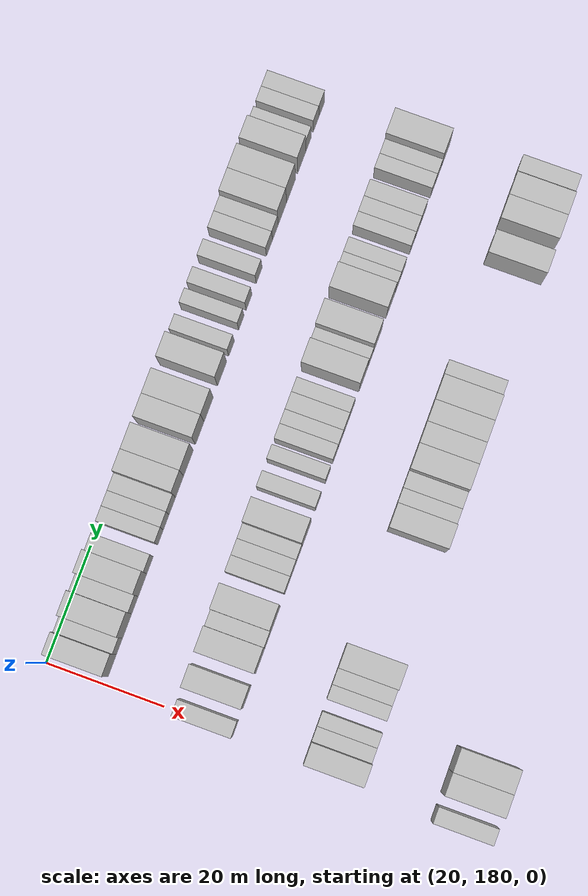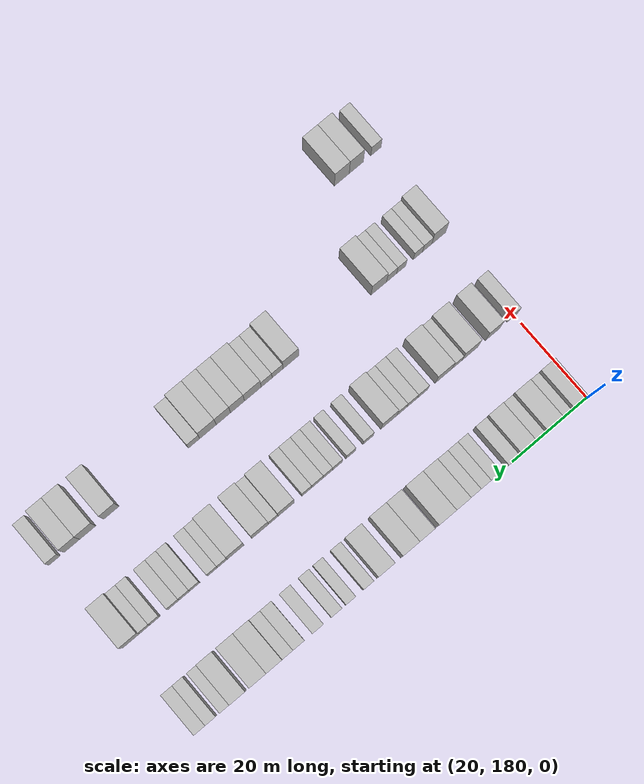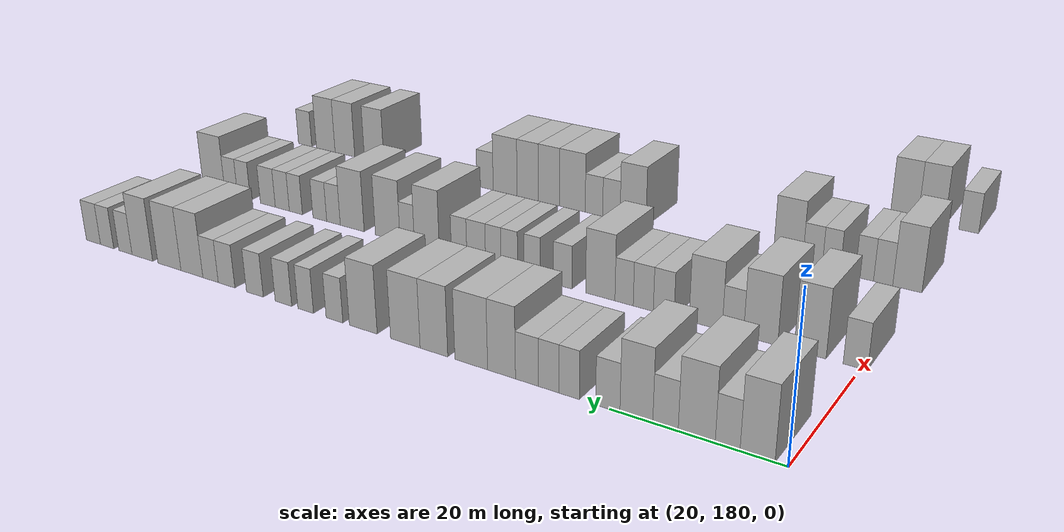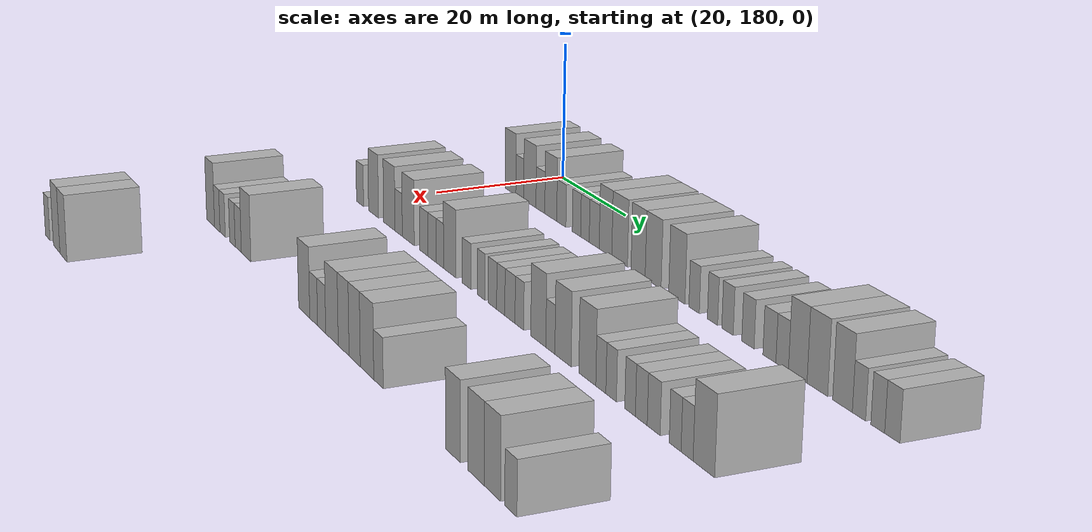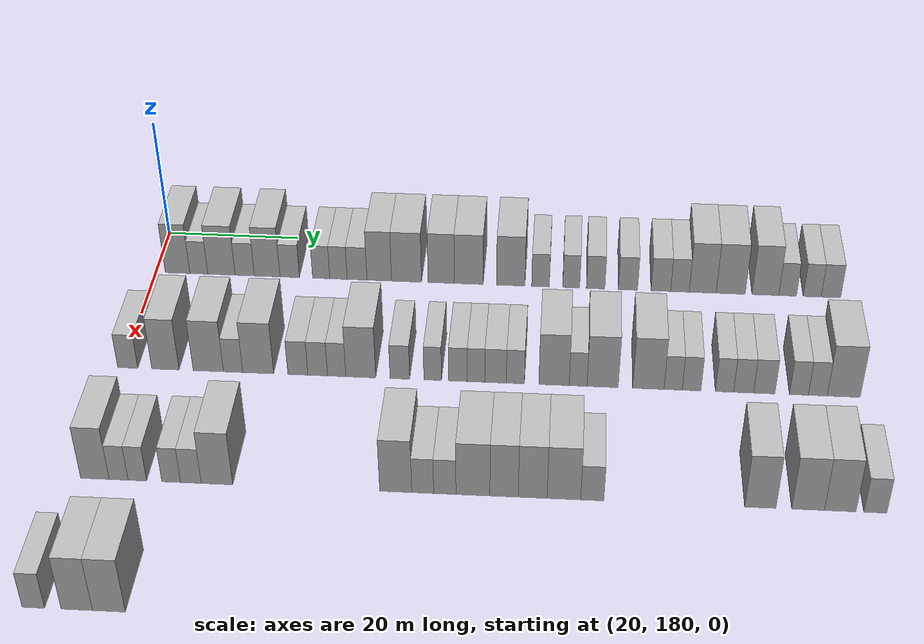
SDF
<sdf version="1.6">
 <world name="default">
  <model name="building_128">
   <static>1</static>
   <pose>25.0000 183.2825 0 0.000000 0.000000 0.000000</pose>
   <link name="link">
    <pose>0 0 4.50 0 0 0</pose>
    <collision name="collision"><geometry><box><size>10.0000 3.7394 9.0000</size></box></geometry></collision>
    <visual name="visual">
     <cast_shadows>0</cast_shadows>
     <geometry><box><size>10.0000 3.7394 9.0000</size></box></geometry>
     <material>
      <script>
       <uri>model://HANNAS_wall/materials/scripts</uri>
       <uri>model://HANNAS_wall/materials/textures</uri>
       <name>vrc/HANNAS_wall</name>
      </script>
     </material>
    </visual>
   </link>
  </model>
  <model name="building_129">
   <static>1</static>
   <pose>25.0000 186.5091 0 0.000000 0.000000 0.000000</pose>
   <link name="link">
    <pose>0 0 3.00 0 0 0</pose>
    <collision name="collision"><geometry><box><size>10.0000 2.7139 6.0000</size></box></geometry></collision>
    <visual name="visual">
     <cast_shadows>0</cast_shadows>
     <geometry><box><size>10.0000 2.7139 6.0000</size></box></geometry>
     <material>
      <script>
       <uri>model://HANNAS_wall/materials/scripts</uri>
       <uri>model://HANNAS_wall/materials/textures</uri>
       <name>vrc/HANNAS_wall</name>
      </script>
     </material>
    </visual>
   </link>
  </model>
  <model name="building_130">
   <static>1</static>
   <pose>25.0000 189.9469 0 0.000000 0.000000 0.000000</pose>
   <link name="link">
    <pose>0 0 4.50 0 0 0</pose>
    <collision name="collision"><geometry><box><size>10.0000 4.1617 9.0000</size></box></geometry></collision>
    <visual name="visual">
     <cast_shadows>0</cast_shadows>
     <geometry><box><size>10.0000 4.1617 9.0000</size></box></geometry>
     <material>
      <script>
       <uri>model://HANNAS_wall/materials/scripts</uri>
       <uri>model://HANNAS_wall/materials/textures</uri>
       <name>vrc/HANNAS_wall</name>
      </script>
     </material>
    </visual>
   </link>
  </model>
  <model name="building_131">
   <static>1</static>
   <pose>25.0000 193.4902 0 0.000000 0.000000 0.000000</pose>
   <link name="link">
    <pose>0 0 3.00 0 0 0</pose>
    <collision name="collision"><geometry><box><size>10.0000 2.9249 6.0000</size></box></geometry></collision>
    <visual name="visual">
     <cast_shadows>0</cast_shadows>
     <geometry><box><size>10.0000 2.9249 6.0000</size></box></geometry>
     <material>
      <script>
       <uri>model://HANNAS_wall/materials/scripts</uri>
       <uri>model://HANNAS_wall/materials/textures</uri>
       <name>vrc/HANNAS_wall</name>
      </script>
     </material>
    </visual>
   </link>
  </model>
  <model name="building_132">
   <static>1</static>
   <pose>25.0000 196.8936 0 0.000000 0.000000 0.000000</pose>
   <link name="link">
    <pose>0 0 4.50 0 0 0</pose>
    <collision name="collision"><geometry><box><size>10.0000 3.8820 9.0000</size></box></geometry></collision>
    <visual name="visual">
     <cast_shadows>0</cast_shadows>
     <geometry><box><size>10.0000 3.8820 9.0000</size></box></geometry>
     <material>
      <script>
       <uri>model://HANNAS_wall/materials/scripts</uri>
       <uri>model://HANNAS_wall/materials/textures</uri>
       <name>vrc/HANNAS_wall</name>
      </script>
     </material>
    </visual>
   </link>
  </model>
  <model name="building_133">
   <static>1</static>
   <pose>25.0000 200.3068 0 0.000000 0.000000 0.000000</pose>
   <link name="link">
    <pose>0 0 3.00 0 0 0</pose>
    <collision name="collision"><geometry><box><size>10.0000 2.9444 6.0000</size></box></geometry></collision>
    <visual name="visual">
     <cast_shadows>0</cast_shadows>
     <geometry><box><size>10.0000 2.9444 6.0000</size></box></geometry>
     <material>
      <script>
       <uri>model://HANNAS_wall/materials/scripts</uri>
       <uri>model://HANNAS_wall/materials/textures</uri>
       <name>vrc/HANNAS_wall</name>
      </script>
     </material>
    </visual>
   </link>
  </model>
  <model name="building_134">
   <static>1</static>
   <pose>25.0000 205.0683 0 0.000000 0.000000 0.000000</pose>
   <link name="link">
    <pose>0 0 3.00 0 0 0</pose>
    <collision name="collision"><geometry><box><size>10.0000 2.5786 6.0000</size></box></geometry></collision>
    <visual name="visual">
     <cast_shadows>0</cast_shadows>
     <geometry><box><size>10.0000 2.5786 6.0000</size></box></geometry>
     <material>
      <script>
       <uri>model://HANNAS_wall/materials/scripts</uri>
       <uri>model://HANNAS_wall/materials/textures</uri>
       <name>vrc/HANNAS_wall</name>
      </script>
     </material>
    </visual>
   </link>
  </model>
  <model name="building_135">
   <static>1</static>
   <pose>25.0000 207.6694 0 0.000000 0.000000 0.000000</pose>
   <link name="link">
    <pose>0 0 3.00 0 0 0</pose>
    <collision name="collision"><geometry><box><size>10.0000 2.6236 6.0000</size></box></geometry></collision>
    <visual name="visual">
     <cast_shadows>0</cast_shadows>
     <geometry><box><size>10.0000 2.6236 6.0000</size></box></geometry>
     <material>
      <script>
       <uri>model://HANNAS_wall/materials/scripts</uri>
       <uri>model://HANNAS_wall/materials/textures</uri>
       <name>vrc/HANNAS_wall</name>
      </script>
     </material>
    </visual>
   </link>
  </model>
  <model name="building_136">
   <static>1</static>
   <pose>25.0000 210.4731 0 0.000000 0.000000 0.000000</pose>
   <link name="link">
    <pose>0 0 3.00 0 0 0</pose>
    <collision name="collision"><geometry><box><size>10.0000 2.9838 6.0000</size></box></geometry></collision>
    <visual name="visual">
     <cast_shadows>0</cast_shadows>
     <geometry><box><size>10.0000 2.9838 6.0000</size></box></geometry>
     <material>
      <script>
       <uri>model://HANNAS_wall/materials/scripts</uri>
       <uri>model://HANNAS_wall/materials/textures</uri>
       <name>vrc/HANNAS_wall</name>
      </script>
     </material>
    </visual>
   </link>
  </model>
  <model name="building_137">
   <static>1</static>
   <pose>25.0000 213.8187 0 0.000000 0.000000 0.000000</pose>
   <link name="link">
    <pose>0 0 4.50 0 0 0</pose>
    <collision name="collision"><geometry><box><size>10.0000 3.7074 9.0000</size></box></geometry></collision>
    <visual name="visual">
     <cast_shadows>0</cast_shadows>
     <geometry><box><size>10.0000 3.7074 9.0000</size></box></geometry>
     <material>
      <script>
       <uri>model://HANNAS_wall/materials/scripts</uri>
       <uri>model://HANNAS_wall/materials/textures</uri>
       <name>vrc/HANNAS_wall</name>
      </script>
     </material>
    </visual>
   </link>
  </model>
  <model name="building_138">
   <static>1</static>
   <pose>25.0000 217.9218 0 0.000000 0.000000 0.000000</pose>
   <link name="link">
    <pose>0 0 4.50 0 0 0</pose>
    <collision name="collision"><geometry><box><size>10.0000 4.4986 9.0000</size></box></geometry></collision>
    <visual name="visual">
     <cast_shadows>0</cast_shadows>
     <geometry><box><size>10.0000 4.4986 9.0000</size></box></geometry>
     <material>
      <script>
       <uri>model://HANNAS_wall/materials/scripts</uri>
       <uri>model://HANNAS_wall/materials/textures</uri>
       <name>vrc/HANNAS_wall</name>
      </script>
     </material>
    </visual>
   </link>
  </model>
  <model name="building_139">
   <static>1</static>
   <pose>25.0000 223.1370 0 0.000000 0.000000 0.000000</pose>
   <link name="link">
    <pose>0 0 4.50 0 0 0</pose>
    <collision name="collision"><geometry><box><size>10.0000 3.9319 9.0000</size></box></geometry></collision>
    <visual name="visual">
     <cast_shadows>0</cast_shadows>
     <geometry><box><size>10.0000 3.9319 9.0000</size></box></geometry>
     <material>
      <script>
       <uri>model://HANNAS_wall/materials/scripts</uri>
       <uri>model://HANNAS_wall/materials/textures</uri>
       <name>vrc/HANNAS_wall</name>
      </script>
     </material>
    </visual>
   </link>
  </model>
  <model name="building_140">
   <static>1</static>
   <pose>25.0000 227.2607 0 0.000000 0.000000 0.000000</pose>
   <link name="link">
    <pose>0 0 4.50 0 0 0</pose>
    <collision name="collision"><geometry><box><size>10.0000 4.3155 9.0000</size></box></geometry></collision>
    <visual name="visual">
     <cast_shadows>0</cast_shadows>
     <geometry><box><size>10.0000 4.3155 9.0000</size></box></geometry>
     <material>
      <script>
       <uri>model://HANNAS_wall/materials/scripts</uri>
       <uri>model://HANNAS_wall/materials/textures</uri>
       <name>vrc/HANNAS_wall</name>
      </script>
     </material>
    </visual>
   </link>
  </model>
  <model name="building_141">
   <static>1</static>
   <pose>25.0000 233.5369 0 0.000000 0.000000 0.000000</pose>
   <link name="link">
    <pose>0 0 4.50 0 0 0</pose>
    <collision name="collision"><geometry><box><size>10.0000 4.2371 9.0000</size></box></geometry></collision>
    <visual name="visual">
     <cast_shadows>0</cast_shadows>
     <geometry><box><size>10.0000 4.2371 9.0000</size></box></geometry>
     <material>
      <script>
       <uri>model://HANNAS_wall/materials/scripts</uri>
       <uri>model://HANNAS_wall/materials/textures</uri>
       <name>vrc/HANNAS_wall</name>
      </script>
     </material>
    </visual>
   </link>
  </model>
  <model name="building_142">
   <static>1</static>
   <pose>25.0000 237.9733 0 0.000000 0.000000 0.000000</pose>
   <link name="link">
    <pose>0 0 3.00 0 0 0</pose>
    <collision name="collision"><geometry><box><size>10.0000 2.6358 6.0000</size></box></geometry></collision>
    <visual name="visual">
     <cast_shadows>0</cast_shadows>
     <geometry><box><size>10.0000 2.6358 6.0000</size></box></geometry>
     <material>
      <script>
       <uri>model://HANNAS_wall/materials/scripts</uri>
       <uri>model://HANNAS_wall/materials/textures</uri>
       <name>vrc/HANNAS_wall</name>
      </script>
     </material>
    </visual>
   </link>
  </model>
  <model name="building_143">
   <static>1</static>
   <pose>25.0000 242.5504 0 0.000000 0.000000 0.000000</pose>
   <link name="link">
    <pose>0 0 3.00 0 0 0</pose>
    <collision name="collision"><geometry><box><size>10.0000 2.5184 6.0000</size></box></geometry></collision>
    <visual name="visual">
     <cast_shadows>0</cast_shadows>
     <geometry><box><size>10.0000 2.5184 6.0000</size></box></geometry>
     <material>
      <script>
       <uri>model://HANNAS_wall/materials/scripts</uri>
       <uri>model://HANNAS_wall/materials/textures</uri>
       <name>vrc/HANNAS_wall</name>
      </script>
     </material>
    </visual>
   </link>
  </model>
  <model name="building_144">
   <static>1</static>
   <pose>25.0000 246.1789 0 0.000000 0.000000 0.000000</pose>
   <link name="link">
    <pose>0 0 3.00 0 0 0</pose>
    <collision name="collision"><geometry><box><size>10.0000 2.7385 6.0000</size></box></geometry></collision>
    <visual name="visual">
     <cast_shadows>0</cast_shadows>
     <geometry><box><size>10.0000 2.7385 6.0000</size></box></geometry>
     <material>
      <script>
       <uri>model://HANNAS_wall/materials/scripts</uri>
       <uri>model://HANNAS_wall/materials/textures</uri>
       <name>vrc/HANNAS_wall</name>
      </script>
     </material>
    </visual>
   </link>
  </model>
  <model name="building_145">
   <static>1</static>
   <pose>25.0000 250.9767 0 0.000000 0.000000 0.000000</pose>
   <link name="link">
    <pose>0 0 3.00 0 0 0</pose>
    <collision name="collision"><geometry><box><size>10.0000 2.8571 6.0000</size></box></geometry></collision>
    <visual name="visual">
     <cast_shadows>0</cast_shadows>
     <geometry><box><size>10.0000 2.8571 6.0000</size></box></geometry>
     <material>
      <script>
       <uri>model://HANNAS_wall/materials/scripts</uri>
       <uri>model://HANNAS_wall/materials/textures</uri>
       <name>vrc/HANNAS_wall</name>
      </script>
     </material>
    </visual>
   </link>
  </model>
  <model name="building_146">
   <static>1</static>
   <pose>25.0000 255.8603 0 0.000000 0.000000 0.000000</pose>
   <link name="link">
    <pose>0 0 3.00 0 0 0</pose>
    <collision name="collision"><geometry><box><size>10.0000 2.9100 6.0000</size></box></geometry></collision>
    <visual name="visual">
     <cast_shadows>0</cast_shadows>
     <geometry><box><size>10.0000 2.9100 6.0000</size></box></geometry>
     <material>
      <script>
       <uri>model://HANNAS_wall/materials/scripts</uri>
       <uri>model://HANNAS_wall/materials/textures</uri>
       <name>vrc/HANNAS_wall</name>
      </script>
     </material>
    </visual>
   </link>
  </model>
  <model name="building_147">
   <static>1</static>
   <pose>25.0000 258.6880 0 0.000000 0.000000 0.000000</pose>
   <link name="link">
    <pose>0 0 3.00 0 0 0</pose>
    <collision name="collision"><geometry><box><size>10.0000 2.7455 6.0000</size></box></geometry></collision>
    <visual name="visual">
     <cast_shadows>0</cast_shadows>
     <geometry><box><size>10.0000 2.7455 6.0000</size></box></geometry>
     <material>
      <script>
       <uri>model://HANNAS_wall/materials/scripts</uri>
       <uri>model://HANNAS_wall/materials/textures</uri>
       <name>vrc/HANNAS_wall</name>
      </script>
     </material>
    </visual>
   </link>
  </model>
  <model name="building_148">
   <static>1</static>
   <pose>25.0000 262.0502 0 0.000000 0.000000 0.000000</pose>
   <link name="link">
    <pose>0 0 4.50 0 0 0</pose>
    <collision name="collision"><geometry><box><size>10.0000 3.9789 9.0000</size></box></geometry></collision>
    <visual name="visual">
     <cast_shadows>0</cast_shadows>
     <geometry><box><size>10.0000 3.9789 9.0000</size></box></geometry>
     <material>
      <script>
       <uri>model://HANNAS_wall/materials/scripts</uri>
       <uri>model://HANNAS_wall/materials/textures</uri>
       <name>vrc/HANNAS_wall</name>
      </script>
     </material>
    </visual>
   </link>
  </model>
  <model name="building_149">
   <static>1</static>
   <pose>25.0000 266.1862 0 0.000000 0.000000 0.000000</pose>
   <link name="link">
    <pose>0 0 4.50 0 0 0</pose>
    <collision name="collision"><geometry><box><size>10.0000 4.2932 9.0000</size></box></geometry></collision>
    <visual name="visual">
     <cast_shadows>0</cast_shadows>
     <geometry><box><size>10.0000 4.2932 9.0000</size></box></geometry>
     <material>
      <script>
       <uri>model://HANNAS_wall/materials/scripts</uri>
       <uri>model://HANNAS_wall/materials/textures</uri>
       <name>vrc/HANNAS_wall</name>
      </script>
     </material>
    </visual>
   </link>
  </model>
  <model name="building_150">
   <static>1</static>
   <pose>25.0000 271.3061 0 0.000000 0.000000 0.000000</pose>
   <link name="link">
    <pose>0 0 4.50 0 0 0</pose>
    <collision name="collision"><geometry><box><size>10.0000 3.9465 9.0000</size></box></geometry></collision>
    <visual name="visual">
     <cast_shadows>0</cast_shadows>
     <geometry><box><size>10.0000 3.9465 9.0000</size></box></geometry>
     <material>
      <script>
       <uri>model://HANNAS_wall/materials/scripts</uri>
       <uri>model://HANNAS_wall/materials/textures</uri>
       <name>vrc/HANNAS_wall</name>
      </script>
     </material>
    </visual>
   </link>
  </model>
  <model name="building_151">
   <static>1</static>
   <pose>25.0000 274.5778 0 0.000000 0.000000 0.000000</pose>
   <link name="link">
    <pose>0 0 3.00 0 0 0</pose>
    <collision name="collision"><geometry><box><size>10.0000 2.5971 6.0000</size></box></geometry></collision>
    <visual name="visual">
     <cast_shadows>0</cast_shadows>
     <geometry><box><size>10.0000 2.5971 6.0000</size></box></geometry>
     <material>
      <script>
       <uri>model://HANNAS_wall/materials/scripts</uri>
       <uri>model://HANNAS_wall/materials/textures</uri>
       <name>vrc/HANNAS_wall</name>
      </script>
     </material>
    </visual>
   </link>
  </model>
  <model name="building_152">
   <static>1</static>
   <pose>25.0000 278.1920 0 0.000000 0.000000 0.000000</pose>
   <link name="link">
    <pose>0 0 3.00 0 0 0</pose>
    <collision name="collision"><geometry><box><size>10.0000 2.6313 6.0000</size></box></geometry></collision>
    <visual name="visual">
     <cast_shadows>0</cast_shadows>
     <geometry><box><size>10.0000 2.6313 6.0000</size></box></geometry>
     <material>
      <script>
       <uri>model://HANNAS_wall/materials/scripts</uri>
       <uri>model://HANNAS_wall/materials/textures</uri>
       <name>vrc/HANNAS_wall</name>
      </script>
     </material>
    </visual>
   </link>
  </model>
  <model name="building_153">
   <static>1</static>
   <pose>25.0000 280.9351 0 0.000000 0.000000 0.000000</pose>
   <link name="link">
    <pose>0 0 3.00 0 0 0</pose>
    <collision name="collision"><geometry><box><size>10.0000 2.8549 6.0000</size></box></geometry></collision>
    <visual name="visual">
     <cast_shadows>0</cast_shadows>
     <geometry><box><size>10.0000 2.8549 6.0000</size></box></geometry>
     <material>
      <script>
       <uri>model://HANNAS_wall/materials/scripts</uri>
       <uri>model://HANNAS_wall/materials/textures</uri>
       <name>vrc/HANNAS_wall</name>
      </script>
     </material>
    </visual>
   </link>
  </model>
  <model name="building_309">
   <static>1</static>
   <pose>47.0000 180.6752 0 0.000000 0.000000 0.000000</pose>
   <link name="link">
    <pose>0 0 3.00 0 0 0</pose>
    <collision name="collision"><geometry><box><size>10.0000 2.8479 6.0000</size></box></geometry></collision>
    <visual name="visual">
     <cast_shadows>0</cast_shadows>
     <geometry><box><size>10.0000 2.8479 6.0000</size></box></geometry>
     <material>
      <script>
       <uri>model://HANNAS_wall/materials/scripts</uri>
       <uri>model://HANNAS_wall/materials/textures</uri>
       <name>vrc/HANNAS_wall</name>
      </script>
     </material>
    </visual>
   </link>
  </model>
  <model name="building_310">
   <static>1</static>
   <pose>47.0000 186.0303 0 0.000000 0.000000 0.000000</pose>
   <link name="link">
    <pose>0 0 4.50 0 0 0</pose>
    <collision name="collision"><geometry><box><size>10.0000 3.8623 9.0000</size></box></geometry></collision>
    <visual name="visual">
     <cast_shadows>0</cast_shadows>
     <geometry><box><size>10.0000 3.8623 9.0000</size></box></geometry>
     <material>
      <script>
       <uri>model://HANNAS_wall/materials/scripts</uri>
       <uri>model://HANNAS_wall/materials/textures</uri>
       <name>vrc/HANNAS_wall</name>
      </script>
     </material>
    </visual>
   </link>
  </model>
  <model name="building_311">
   <static>1</static>
   <pose>47.0000 192.1035 0 0.000000 0.000000 0.000000</pose>
   <link name="link">
    <pose>0 0 4.50 0 0 0</pose>
    <collision name="collision"><geometry><box><size>10.0000 4.2842 9.0000</size></box></geometry></collision>
    <visual name="visual">
     <cast_shadows>0</cast_shadows>
     <geometry><box><size>10.0000 4.2842 9.0000</size></box></geometry>
     <material>
      <script>
       <uri>model://HANNAS_wall/materials/scripts</uri>
       <uri>model://HANNAS_wall/materials/textures</uri>
       <name>vrc/HANNAS_wall</name>
      </script>
     </material>
    </visual>
   </link>
  </model>
  <model name="building_312">
   <static>1</static>
   <pose>47.0000 195.6092 0 0.000000 0.000000 0.000000</pose>
   <link name="link">
    <pose>0 0 3.00 0 0 0</pose>
    <collision name="collision"><geometry><box><size>10.0000 2.7272 6.0000</size></box></geometry></collision>
    <visual name="visual">
     <cast_shadows>0</cast_shadows>
     <geometry><box><size>10.0000 2.7272 6.0000</size></box></geometry>
     <material>
      <script>
       <uri>model://HANNAS_wall/materials/scripts</uri>
       <uri>model://HANNAS_wall/materials/textures</uri>
       <name>vrc/HANNAS_wall</name>
      </script>
     </material>
    </visual>
   </link>
  </model>
  <model name="building_313">
   <static>1</static>
   <pose>47.0000 199.1508 0 0.000000 0.000000 0.000000</pose>
   <link name="link">
    <pose>0 0 4.50 0 0 0</pose>
    <collision name="collision"><geometry><box><size>10.0000 4.3560 9.0000</size></box></geometry></collision>
    <visual name="visual">
     <cast_shadows>0</cast_shadows>
     <geometry><box><size>10.0000 4.3560 9.0000</size></box></geometry>
     <material>
      <script>
       <uri>model://HANNAS_wall/materials/scripts</uri>
       <uri>model://HANNAS_wall/materials/textures</uri>
       <name>vrc/HANNAS_wall</name>
      </script>
     </material>
    </visual>
   </link>
  </model>
  <model name="building_314">
   <static>1</static>
   <pose>47.0000 204.7359 0 0.000000 0.000000 0.000000</pose>
   <link name="link">
    <pose>0 0 3.00 0 0 0</pose>
    <collision name="collision"><geometry><box><size>10.0000 2.8141 6.0000</size></box></geometry></collision>
    <visual name="visual">
     <cast_shadows>0</cast_shadows>
     <geometry><box><size>10.0000 2.8141 6.0000</size></box></geometry>
     <material>
      <script>
       <uri>model://HANNAS_wall/materials/scripts</uri>
       <uri>model://HANNAS_wall/materials/textures</uri>
       <name>vrc/HANNAS_wall</name>
      </script>
     </material>
    </visual>
   </link>
  </model>
  <model name="building_315">
   <static>1</static>
   <pose>47.0000 207.5289 0 0.000000 0.000000 0.000000</pose>
   <link name="link">
    <pose>0 0 3.00 0 0 0</pose>
    <collision name="collision"><geometry><box><size>10.0000 2.7719 6.0000</size></box></geometry></collision>
    <visual name="visual">
     <cast_shadows>0</cast_shadows>
     <geometry><box><size>10.0000 2.7719 6.0000</size></box></geometry>
     <material>
      <script>
       <uri>model://HANNAS_wall/materials/scripts</uri>
       <uri>model://HANNAS_wall/materials/textures</uri>
       <name>vrc/HANNAS_wall</name>
      </script>
     </material>
    </visual>
   </link>
  </model>
  <model name="building_316">
   <static>1</static>
   <pose>47.0000 210.1991 0 0.000000 0.000000 0.000000</pose>
   <link name="link">
    <pose>0 0 3.00 0 0 0</pose>
    <collision name="collision"><geometry><box><size>10.0000 2.5685 6.0000</size></box></geometry></collision>
    <visual name="visual">
     <cast_shadows>0</cast_shadows>
     <geometry><box><size>10.0000 2.5685 6.0000</size></box></geometry>
     <material>
      <script>
       <uri>model://HANNAS_wall/materials/scripts</uri>
       <uri>model://HANNAS_wall/materials/textures</uri>
       <name>vrc/HANNAS_wall</name>
      </script>
     </material>
    </visual>
   </link>
  </model>
  <model name="building_317">
   <static>1</static>
   <pose>47.0000 213.5788 0 0.000000 0.000000 0.000000</pose>
   <link name="link">
    <pose>0 0 4.50 0 0 0</pose>
    <collision name="collision"><geometry><box><size>10.0000 4.1910 9.0000</size></box></geometry></collision>
    <visual name="visual">
     <cast_shadows>0</cast_shadows>
     <geometry><box><size>10.0000 4.1910 9.0000</size></box></geometry>
     <material>
      <script>
       <uri>model://HANNAS_wall/materials/scripts</uri>
       <uri>model://HANNAS_wall/materials/textures</uri>
       <name>vrc/HANNAS_wall</name>
      </script>
     </material>
    </visual>
   </link>
  </model>
  <model name="building_318">
   <static>1</static>
   <pose>47.0000 219.0466 0 0.000000 0.000000 0.000000</pose>
   <link name="link">
    <pose>0 0 3.00 0 0 0</pose>
    <collision name="collision"><geometry><box><size>10.0000 2.7446 6.0000</size></box></geometry></collision>
    <visual name="visual">
     <cast_shadows>0</cast_shadows>
     <geometry><box><size>10.0000 2.7446 6.0000</size></box></geometry>
     <material>
      <script>
       <uri>model://HANNAS_wall/materials/scripts</uri>
       <uri>model://HANNAS_wall/materials/textures</uri>
       <name>vrc/HANNAS_wall</name>
      </script>
     </material>
    </visual>
   </link>
  </model>
  <model name="building_319">
   <static>1</static>
   <pose>47.0000 223.6427 0 0.000000 0.000000 0.000000</pose>
   <link name="link">
    <pose>0 0 3.00 0 0 0</pose>
    <collision name="collision"><geometry><box><size>10.0000 2.4476 6.0000</size></box></geometry></collision>
    <visual name="visual">
     <cast_shadows>0</cast_shadows>
     <geometry><box><size>10.0000 2.4476 6.0000</size></box></geometry>
     <material>
      <script>
       <uri>model://HANNAS_wall/materials/scripts</uri>
       <uri>model://HANNAS_wall/materials/textures</uri>
       <name>vrc/HANNAS_wall</name>
      </script>
     </material>
    </visual>
   </link>
  </model>
  <model name="building_320">
   <static>1</static>
   <pose>47.0000 227.1590 0 0.000000 0.000000 0.000000</pose>
   <link name="link">
    <pose>0 0 3.00 0 0 0</pose>
    <collision name="collision"><geometry><box><size>10.0000 2.5849 6.0000</size></box></geometry></collision>
    <visual name="visual">
     <cast_shadows>0</cast_shadows>
     <geometry><box><size>10.0000 2.5849 6.0000</size></box></geometry>
     <material>
      <script>
       <uri>model://HANNAS_wall/materials/scripts</uri>
       <uri>model://HANNAS_wall/materials/textures</uri>
       <name>vrc/HANNAS_wall</name>
      </script>
     </material>
    </visual>
   </link>
  </model>
  <model name="building_321">
   <static>1</static>
   <pose>47.0000 229.6746 0 0.000000 0.000000 0.000000</pose>
   <link name="link">
    <pose>0 0 3.00 0 0 0</pose>
    <collision name="collision"><geometry><box><size>10.0000 2.4464 6.0000</size></box></geometry></collision>
    <visual name="visual">
     <cast_shadows>0</cast_shadows>
     <geometry><box><size>10.0000 2.4464 6.0000</size></box></geometry>
     <material>
      <script>
       <uri>model://HANNAS_wall/materials/scripts</uri>
       <uri>model://HANNAS_wall/materials/textures</uri>
       <name>vrc/HANNAS_wall</name>
      </script>
     </material>
    </visual>
   </link>
  </model>
  <model name="building_322">
   <static>1</static>
   <pose>47.0000 232.3969 0 0.000000 0.000000 0.000000</pose>
   <link name="link">
    <pose>0 0 3.00 0 0 0</pose>
    <collision name="collision"><geometry><box><size>10.0000 2.9982 6.0000</size></box></geometry></collision>
    <visual name="visual">
     <cast_shadows>0</cast_shadows>
     <geometry><box><size>10.0000 2.9982 6.0000</size></box></geometry>
     <material>
      <script>
       <uri>model://HANNAS_wall/materials/scripts</uri>
       <uri>model://HANNAS_wall/materials/textures</uri>
       <name>vrc/HANNAS_wall</name>
      </script>
     </material>
    </visual>
   </link>
  </model>
  <model name="building_323">
   <static>1</static>
   <pose>47.0000 235.1556 0 0.000000 0.000000 0.000000</pose>
   <link name="link">
    <pose>0 0 3.00 0 0 0</pose>
    <collision name="collision"><geometry><box><size>10.0000 2.5191 6.0000</size></box></geometry></collision>
    <visual name="visual">
     <cast_shadows>0</cast_shadows>
     <geometry><box><size>10.0000 2.5191 6.0000</size></box></geometry>
     <material>
      <script>
       <uri>model://HANNAS_wall/materials/scripts</uri>
       <uri>model://HANNAS_wall/materials/textures</uri>
       <name>vrc/HANNAS_wall</name>
      </script>
     </material>
    </visual>
   </link>
  </model>
  <model name="building_324">
   <static>1</static>
   <pose>47.0000 240.5168 0 0.000000 0.000000 0.000000</pose>
   <link name="link">
    <pose>0 0 4.50 0 0 0</pose>
    <collision name="collision"><geometry><box><size>10.0000 4.2034 9.0000</size></box></geometry></collision>
    <visual name="visual">
     <cast_shadows>0</cast_shadows>
     <geometry><box><size>10.0000 4.2034 9.0000</size></box></geometry>
     <material>
      <script>
       <uri>model://HANNAS_wall/materials/scripts</uri>
       <uri>model://HANNAS_wall/materials/textures</uri>
       <name>vrc/HANNAS_wall</name>
      </script>
     </material>
    </visual>
   </link>
  </model>
  <model name="building_325">
   <static>1</static>
   <pose>47.0000 243.8509 0 0.000000 0.000000 0.000000</pose>
   <link name="link">
    <pose>0 0 3.00 0 0 0</pose>
    <collision name="collision"><geometry><box><size>10.0000 2.4648 6.0000</size></box></geometry></collision>
    <visual name="visual">
     <cast_shadows>0</cast_shadows>
     <geometry><box><size>10.0000 2.4648 6.0000</size></box></geometry>
     <material>
      <script>
       <uri>model://HANNAS_wall/materials/scripts</uri>
       <uri>model://HANNAS_wall/materials/textures</uri>
       <name>vrc/HANNAS_wall</name>
      </script>
     </material>
    </visual>
   </link>
  </model>
  <model name="building_326">
   <static>1</static>
   <pose>47.0000 247.2424 0 0.000000 0.000000 0.000000</pose>
   <link name="link">
    <pose>0 0 4.50 0 0 0</pose>
    <collision name="collision"><geometry><box><size>10.0000 4.3182 9.0000</size></box></geometry></collision>
    <visual name="visual">
     <cast_shadows>0</cast_shadows>
     <geometry><box><size>10.0000 4.3182 9.0000</size></box></geometry>
     <material>
      <script>
       <uri>model://HANNAS_wall/materials/scripts</uri>
       <uri>model://HANNAS_wall/materials/textures</uri>
       <name>vrc/HANNAS_wall</name>
      </script>
     </material>
    </visual>
   </link>
  </model>
  <model name="building_327">
   <static>1</static>
   <pose>47.0000 253.5640 0 0.000000 0.000000 0.000000</pose>
   <link name="link">
    <pose>0 0 4.50 0 0 0</pose>
    <collision name="collision"><geometry><box><size>10.0000 4.3251 9.0000</size></box></geometry></collision>
    <visual name="visual">
     <cast_shadows>0</cast_shadows>
     <geometry><box><size>10.0000 4.3251 9.0000</size></box></geometry>
     <material>
      <script>
       <uri>model://HANNAS_wall/materials/scripts</uri>
       <uri>model://HANNAS_wall/materials/textures</uri>
       <name>vrc/HANNAS_wall</name>
      </script>
     </material>
    </visual>
   </link>
  </model>
  <model name="building_328">
   <static>1</static>
   <pose>47.0000 256.9777 0 0.000000 0.000000 0.000000</pose>
   <link name="link">
    <pose>0 0 3.00 0 0 0</pose>
    <collision name="collision"><geometry><box><size>10.0000 2.5022 6.0000</size></box></geometry></collision>
    <visual name="visual">
     <cast_shadows>0</cast_shadows>
     <geometry><box><size>10.0000 2.5022 6.0000</size></box></geometry>
     <material>
      <script>
       <uri>model://HANNAS_wall/materials/scripts</uri>
       <uri>model://HANNAS_wall/materials/textures</uri>
       <name>vrc/HANNAS_wall</name>
      </script>
     </material>
    </visual>
   </link>
  </model>
  <model name="building_329">
   <static>1</static>
   <pose>47.0000 259.5141 0 0.000000 0.000000 0.000000</pose>
   <link name="link">
    <pose>0 0 3.00 0 0 0</pose>
    <collision name="collision"><geometry><box><size>10.0000 2.5706 6.0000</size></box></geometry></collision>
    <visual name="visual">
     <cast_shadows>0</cast_shadows>
     <geometry><box><size>10.0000 2.5706 6.0000</size></box></geometry>
     <material>
      <script>
       <uri>model://HANNAS_wall/materials/scripts</uri>
       <uri>model://HANNAS_wall/materials/textures</uri>
       <name>vrc/HANNAS_wall</name>
      </script>
     </material>
    </visual>
   </link>
  </model>
  <model name="building_330">
   <static>1</static>
   <pose>47.0000 264.0508 0 0.000000 0.000000 0.000000</pose>
   <link name="link">
    <pose>0 0 3.00 0 0 0</pose>
    <collision name="collision"><geometry><box><size>10.0000 2.5027 6.0000</size></box></geometry></collision>
    <visual name="visual">
     <cast_shadows>0</cast_shadows>
     <geometry><box><size>10.0000 2.5027 6.0000</size></box></geometry>
     <material>
      <script>
       <uri>model://HANNAS_wall/materials/scripts</uri>
       <uri>model://HANNAS_wall/materials/textures</uri>
       <name>vrc/HANNAS_wall</name>
      </script>
     </material>
    </visual>
   </link>
  </model>
  <model name="building_331">
   <static>1</static>
   <pose>47.0000 266.6658 0 0.000000 0.000000 0.000000</pose>
   <link name="link">
    <pose>0 0 3.00 0 0 0</pose>
    <collision name="collision"><geometry><box><size>10.0000 2.7274 6.0000</size></box></geometry></collision>
    <visual name="visual">
     <cast_shadows>0</cast_shadows>
     <geometry><box><size>10.0000 2.7274 6.0000</size></box></geometry>
     <material>
      <script>
       <uri>model://HANNAS_wall/materials/scripts</uri>
       <uri>model://HANNAS_wall/materials/textures</uri>
       <name>vrc/HANNAS_wall</name>
      </script>
     </material>
    </visual>
   </link>
  </model>
  <model name="building_332">
   <static>1</static>
   <pose>47.0000 269.4970 0 0.000000 0.000000 0.000000</pose>
   <link name="link">
    <pose>0 0 3.00 0 0 0</pose>
    <collision name="collision"><geometry><box><size>10.0000 2.9349 6.0000</size></box></geometry></collision>
    <visual name="visual">
     <cast_shadows>0</cast_shadows>
     <geometry><box><size>10.0000 2.9349 6.0000</size></box></geometry>
     <material>
      <script>
       <uri>model://HANNAS_wall/materials/scripts</uri>
       <uri>model://HANNAS_wall/materials/textures</uri>
       <name>vrc/HANNAS_wall</name>
      </script>
     </material>
    </visual>
   </link>
  </model>
  <model name="building_333">
   <static>1</static>
   <pose>47.0000 274.2527 0 0.000000 0.000000 0.000000</pose>
   <link name="link">
    <pose>0 0 3.00 0 0 0</pose>
    <collision name="collision"><geometry><box><size>10.0000 2.5766 6.0000</size></box></geometry></collision>
    <visual name="visual">
     <cast_shadows>0</cast_shadows>
     <geometry><box><size>10.0000 2.5766 6.0000</size></box></geometry>
     <material>
      <script>
       <uri>model://HANNAS_wall/materials/scripts</uri>
       <uri>model://HANNAS_wall/materials/textures</uri>
       <name>vrc/HANNAS_wall</name>
      </script>
     </material>
    </visual>
   </link>
  </model>
  <model name="building_334">
   <static>1</static>
   <pose>47.0000 276.8312 0 0.000000 0.000000 0.000000</pose>
   <link name="link">
    <pose>0 0 3.00 0 0 0</pose>
    <collision name="collision"><geometry><box><size>10.0000 2.5804 6.0000</size></box></geometry></collision>
    <visual name="visual">
     <cast_shadows>0</cast_shadows>
     <geometry><box><size>10.0000 2.5804 6.0000</size></box></geometry>
     <material>
      <script>
       <uri>model://HANNAS_wall/materials/scripts</uri>
       <uri>model://HANNAS_wall/materials/textures</uri>
       <name>vrc/HANNAS_wall</name>
      </script>
     </material>
    </visual>
   </link>
  </model>
  <model name="building_335">
   <static>1</static>
   <pose>47.0000 280.3709 0 0.000000 0.000000 0.000000</pose>
   <link name="link">
    <pose>0 0 4.50 0 0 0</pose>
    <collision name="collision"><geometry><box><size>10.0000 4.4990 9.0000</size></box></geometry></collision>
    <visual name="visual">
     <cast_shadows>0</cast_shadows>
     <geometry><box><size>10.0000 4.4990 9.0000</size></box></geometry>
     <material>
      <script>
       <uri>model://HANNAS_wall/materials/scripts</uri>
       <uri>model://HANNAS_wall/materials/textures</uri>
       <name>vrc/HANNAS_wall</name>
      </script>
     </material>
    </visual>
   </link>
  </model>
  <model name="building_500">
   <static>1</static>
   <pose>69.0000 181.3356 0 0.000000 0.000000 0.000000</pose>
   <link name="link">
    <pose>0 0 4.50 0 0 0</pose>
    <collision name="collision"><geometry><box><size>10.0000 3.7391 9.0000</size></box></geometry></collision>
    <visual name="visual">
     <cast_shadows>0</cast_shadows>
     <geometry><box><size>10.0000 3.7391 9.0000</size></box></geometry>
     <material>
      <script>
       <uri>model://HANNAS_wall/materials/scripts</uri>
       <uri>model://HANNAS_wall/materials/textures</uri>
       <name>vrc/HANNAS_wall</name>
      </script>
     </material>
    </visual>
   </link>
  </model>
  <model name="building_501">
   <static>1</static>
   <pose>69.0000 184.4578 0 0.000000 0.000000 0.000000</pose>
   <link name="link">
    <pose>0 0 3.00 0 0 0</pose>
    <collision name="collision"><geometry><box><size>10.0000 2.5055 6.0000</size></box></geometry></collision>
    <visual name="visual">
     <cast_shadows>0</cast_shadows>
     <geometry><box><size>10.0000 2.5055 6.0000</size></box></geometry>
     <material>
      <script>
       <uri>model://HANNAS_wall/materials/scripts</uri>
       <uri>model://HANNAS_wall/materials/textures</uri>
       <name>vrc/HANNAS_wall</name>
      </script>
     </material>
    </visual>
   </link>
  </model>
  <model name="building_502">
   <static>1</static>
   <pose>69.0000 186.9289 0 0.000000 0.000000 0.000000</pose>
   <link name="link">
    <pose>0 0 3.00 0 0 0</pose>
    <collision name="collision"><geometry><box><size>10.0000 2.4366 6.0000</size></box></geometry></collision>
    <visual name="visual">
     <cast_shadows>0</cast_shadows>
     <geometry><box><size>10.0000 2.4366 6.0000</size></box></geometry>
     <material>
      <script>
       <uri>model://HANNAS_wall/materials/scripts</uri>
       <uri>model://HANNAS_wall/materials/textures</uri>
       <name>vrc/HANNAS_wall</name>
      </script>
     </material>
    </visual>
   </link>
  </model>
  <model name="building_503">
   <static>1</static>
   <pose>69.0000 191.3771 0 0.000000 0.000000 0.000000</pose>
   <link name="link">
    <pose>0 0 3.00 0 0 0</pose>
    <collision name="collision"><geometry><box><size>10.0000 2.4599 6.0000</size></box></geometry></collision>
    <visual name="visual">
     <cast_shadows>0</cast_shadows>
     <geometry><box><size>10.0000 2.4599 6.0000</size></box></geometry>
     <material>
      <script>
       <uri>model://HANNAS_wall/materials/scripts</uri>
       <uri>model://HANNAS_wall/materials/textures</uri>
       <name>vrc/HANNAS_wall</name>
      </script>
     </material>
    </visual>
   </link>
  </model>
  <model name="building_504">
   <static>1</static>
   <pose>69.0000 193.9618 0 0.000000 0.000000 0.000000</pose>
   <link name="link">
    <pose>0 0 3.00 0 0 0</pose>
    <collision name="collision"><geometry><box><size>10.0000 2.7095 6.0000</size></box></geometry></collision>
    <visual name="visual">
     <cast_shadows>0</cast_shadows>
     <geometry><box><size>10.0000 2.7095 6.0000</size></box></geometry>
     <material>
      <script>
       <uri>model://HANNAS_wall/materials/scripts</uri>
       <uri>model://HANNAS_wall/materials/textures</uri>
       <name>vrc/HANNAS_wall</name>
      </script>
     </material>
    </visual>
   </link>
  </model>
  <model name="building_505">
   <static>1</static>
   <pose>69.0000 197.3755 0 0.000000 0.000000 0.000000</pose>
   <link name="link">
    <pose>0 0 4.50 0 0 0</pose>
    <collision name="collision"><geometry><box><size>10.0000 4.1179 9.0000</size></box></geometry></collision>
    <visual name="visual">
     <cast_shadows>0</cast_shadows>
     <geometry><box><size>10.0000 4.1179 9.0000</size></box></geometry>
     <material>
      <script>
       <uri>model://HANNAS_wall/materials/scripts</uri>
       <uri>model://HANNAS_wall/materials/textures</uri>
       <name>vrc/HANNAS_wall</name>
      </script>
     </material>
    </visual>
   </link>
  </model>
  <model name="building_506">
   <static>1</static>
   <pose>69.0000 220.6399 0 0.000000 0.000000 0.000000</pose>
   <link name="link">
    <pose>0 0 4.50 0 0 0</pose>
    <collision name="collision"><geometry><box><size>10.0000 4.1369 9.0000</size></box></geometry></collision>
    <visual name="visual">
     <cast_shadows>0</cast_shadows>
     <geometry><box><size>10.0000 4.1369 9.0000</size></box></geometry>
     <material>
      <script>
       <uri>model://HANNAS_wall/materials/scripts</uri>
       <uri>model://HANNAS_wall/materials/textures</uri>
       <name>vrc/HANNAS_wall</name>
      </script>
     </material>
    </visual>
   </link>
  </model>
  <model name="building_507">
   <static>1</static>
   <pose>69.0000 224.1257 0 0.000000 0.000000 0.000000</pose>
   <link name="link">
    <pose>0 0 3.00 0 0 0</pose>
    <collision name="collision"><geometry><box><size>10.0000 2.8346 6.0000</size></box></geometry></collision>
    <visual name="visual">
     <cast_shadows>0</cast_shadows>
     <geometry><box><size>10.0000 2.8346 6.0000</size></box></geometry>
     <material>
      <script>
       <uri>model://HANNAS_wall/materials/scripts</uri>
       <uri>model://HANNAS_wall/materials/textures</uri>
       <name>vrc/HANNAS_wall</name>
      </script>
     </material>
    </visual>
   </link>
  </model>
  <model name="building_508">
   <static>1</static>
   <pose>69.0000 226.9864 0 0.000000 0.000000 0.000000</pose>
   <link name="link">
    <pose>0 0 3.00 0 0 0</pose>
    <collision name="collision"><geometry><box><size>10.0000 2.8868 6.0000</size></box></geometry></collision>
    <visual name="visual">
     <cast_shadows>0</cast_shadows>
     <geometry><box><size>10.0000 2.8868 6.0000</size></box></geometry>
     <material>
      <script>
       <uri>model://HANNAS_wall/materials/scripts</uri>
       <uri>model://HANNAS_wall/materials/textures</uri>
       <name>vrc/HANNAS_wall</name>
      </script>
     </material>
    </visual>
   </link>
  </model>
  <model name="building_509">
   <static>1</static>
   <pose>69.0000 230.6119 0 0.000000 0.000000 0.000000</pose>
   <link name="link">
    <pose>0 0 4.50 0 0 0</pose>
    <collision name="collision"><geometry><box><size>10.0000 4.3642 9.0000</size></box></geometry></collision>
    <visual name="visual">
     <cast_shadows>0</cast_shadows>
     <geometry><box><size>10.0000 4.3642 9.0000</size></box></geometry>
     <material>
      <script>
       <uri>model://HANNAS_wall/materials/scripts</uri>
       <uri>model://HANNAS_wall/materials/textures</uri>
       <name>vrc/HANNAS_wall</name>
      </script>
     </material>
    </visual>
   </link>
  </model>
  <model name="building_510">
   <static>1</static>
   <pose>69.0000 234.6242 0 0.000000 0.000000 0.000000</pose>
   <link name="link">
    <pose>0 0 4.50 0 0 0</pose>
    <collision name="collision"><geometry><box><size>10.0000 3.6603 9.0000</size></box></geometry></collision>
    <visual name="visual">
     <cast_shadows>0</cast_shadows>
     <geometry><box><size>10.0000 3.6603 9.0000</size></box></geometry>
     <material>
      <script>
       <uri>model://HANNAS_wall/materials/scripts</uri>
       <uri>model://HANNAS_wall/materials/textures</uri>
       <name>vrc/HANNAS_wall</name>
      </script>
     </material>
    </visual>
   </link>
  </model>
  <model name="building_511">
   <static>1</static>
   <pose>69.0000 238.3078 0 0.000000 0.000000 0.000000</pose>
   <link name="link">
    <pose>0 0 4.50 0 0 0</pose>
    <collision name="collision"><geometry><box><size>10.0000 3.7069 9.0000</size></box></geometry></collision>
    <visual name="visual">
     <cast_shadows>0</cast_shadows>
     <geometry><box><size>10.0000 3.7069 9.0000</size></box></geometry>
     <material>
      <script>
       <uri>model://HANNAS_wall/materials/scripts</uri>
       <uri>model://HANNAS_wall/materials/textures</uri>
       <name>vrc/HANNAS_wall</name>
      </script>
     </material>
    </visual>
   </link>
  </model>
  <model name="building_512">
   <static>1</static>
   <pose>69.0000 242.3122 0 0.000000 0.000000 0.000000</pose>
   <link name="link">
    <pose>0 0 4.50 0 0 0</pose>
    <collision name="collision"><geometry><box><size>10.0000 4.3018 9.0000</size></box></geometry></collision>
    <visual name="visual">
     <cast_shadows>0</cast_shadows>
     <geometry><box><size>10.0000 4.3018 9.0000</size></box></geometry>
     <material>
      <script>
       <uri>model://HANNAS_wall/materials/scripts</uri>
       <uri>model://HANNAS_wall/materials/textures</uri>
       <name>vrc/HANNAS_wall</name>
      </script>
     </material>
    </visual>
   </link>
  </model>
  <model name="building_513">
   <static>1</static>
   <pose>69.0000 245.9474 0 0.000000 0.000000 0.000000</pose>
   <link name="link">
    <pose>0 0 3.00 0 0 0</pose>
    <collision name="collision"><geometry><box><size>10.0000 2.9685 6.0000</size></box></geometry></collision>
    <visual name="visual">
     <cast_shadows>0</cast_shadows>
     <geometry><box><size>10.0000 2.9685 6.0000</size></box></geometry>
     <material>
      <script>
       <uri>model://HANNAS_wall/materials/scripts</uri>
       <uri>model://HANNAS_wall/materials/textures</uri>
       <name>vrc/HANNAS_wall</name>
      </script>
     </material>
    </visual>
   </link>
  </model>
  <model name="building_514">
   <static>1</static>
   <pose>69.0000 267.3774 0 0.000000 0.000000 0.000000</pose>
   <link name="link">
    <pose>0 0 4.50 0 0 0</pose>
    <collision name="collision"><geometry><box><size>10.0000 3.9638 9.0000</size></box></geometry></collision>
    <visual name="visual">
     <cast_shadows>0</cast_shadows>
     <geometry><box><size>10.0000 3.9638 9.0000</size></box></geometry>
     <material>
      <script>
       <uri>model://HANNAS_wall/materials/scripts</uri>
       <uri>model://HANNAS_wall/materials/textures</uri>
       <name>vrc/HANNAS_wall</name>
      </script>
     </material>
    </visual>
   </link>
  </model>
  <model name="building_515">
   <static>1</static>
   <pose>69.0000 273.4274 0 0.000000 0.000000 0.000000</pose>
   <link name="link">
    <pose>0 0 4.50 0 0 0</pose>
    <collision name="collision"><geometry><box><size>10.0000 4.1363 9.0000</size></box></geometry></collision>
    <visual name="visual">
     <cast_shadows>0</cast_shadows>
     <geometry><box><size>10.0000 4.1363 9.0000</size></box></geometry>
     <material>
      <script>
       <uri>model://HANNAS_wall/materials/scripts</uri>
       <uri>model://HANNAS_wall/materials/textures</uri>
       <name>vrc/HANNAS_wall</name>
      </script>
     </material>
    </visual>
   </link>
  </model>
  <model name="building_516">
   <static>1</static>
   <pose>69.0000 277.4876 0 0.000000 0.000000 0.000000</pose>
   <link name="link">
    <pose>0 0 4.50 0 0 0</pose>
    <collision name="collision"><geometry><box><size>10.0000 3.9841 9.0000</size></box></geometry></collision>
    <visual name="visual">
     <cast_shadows>0</cast_shadows>
     <geometry><box><size>10.0000 3.9841 9.0000</size></box></geometry>
     <material>
      <script>
       <uri>model://HANNAS_wall/materials/scripts</uri>
       <uri>model://HANNAS_wall/materials/textures</uri>
       <name>vrc/HANNAS_wall</name>
      </script>
     </material>
    </visual>
   </link>
  </model>
  <model name="building_517">
   <static>1</static>
   <pose>69.0000 281.9264 0 0.000000 0.000000 0.000000</pose>
   <link name="link">
    <pose>0 0 3.00 0 0 0</pose>
    <collision name="collision"><geometry><box><size>10.0000 2.8933 6.0000</size></box></geometry></collision>
    <visual name="visual">
     <cast_shadows>0</cast_shadows>
     <geometry><box><size>10.0000 2.8933 6.0000</size></box></geometry>
     <material>
      <script>
       <uri>model://HANNAS_wall/materials/scripts</uri>
       <uri>model://HANNAS_wall/materials/textures</uri>
       <name>vrc/HANNAS_wall</name>
      </script>
     </material>
    </visual>
   </link>
  </model>
  <model name="building_675">
   <static>1</static>
   <pose>91.0000 179.2166 0 0.000000 0.000000 0.000000</pose>
   <link name="link">
    <pose>0 0 3.00 0 0 0</pose>
    <collision name="collision"><geometry><box><size>10.0000 2.7337 6.0000</size></box></geometry></collision>
    <visual name="visual">
     <cast_shadows>0</cast_shadows>
     <geometry><box><size>10.0000 2.7337 6.0000</size></box></geometry>
     <material>
      <script>
       <uri>model://HANNAS_wall/materials/scripts</uri>
       <uri>model://HANNAS_wall/materials/textures</uri>
       <name>vrc/HANNAS_wall</name>
      </script>
     </material>
    </visual>
   </link>
  </model>
  <model name="building_676">
   <static>1</static>
   <pose>91.0000 184.4807 0 0.000000 0.000000 0.000000</pose>
   <link name="link">
    <pose>0 0 4.50 0 0 0</pose>
    <collision name="collision"><geometry><box><size>10.0000 3.7944 9.0000</size></box></geometry></collision>
    <visual name="visual">
     <cast_shadows>0</cast_shadows>
     <geometry><box><size>10.0000 3.7944 9.0000</size></box></geometry>
     <material>
      <script>
       <uri>model://HANNAS_wall/materials/scripts</uri>
       <uri>model://HANNAS_wall/materials/textures</uri>
       <name>vrc/HANNAS_wall</name>
      </script>
     </material>
    </visual>
   </link>
  </model>
  <model name="building_677">
   <static>1</static>
   <pose>91.0000 188.3707 0 0.000000 0.000000 0.000000</pose>
   <link name="link">
    <pose>0 0 4.50 0 0 0</pose>
    <collision name="collision"><geometry><box><size>10.0000 3.9856 9.0000</size></box></geometry></collision>
    <visual name="visual">
     <cast_shadows>0</cast_shadows>
     <geometry><box><size>10.0000 3.9856 9.0000</size></box></geometry>
     <material>
      <script>
       <uri>model://HANNAS_wall/materials/scripts</uri>
       <uri>model://HANNAS_wall/materials/textures</uri>
       <name>vrc/HANNAS_wall</name>
      </script>
     </material>
    </visual>
   </link>
  </model>
 </world>
</sdf>
